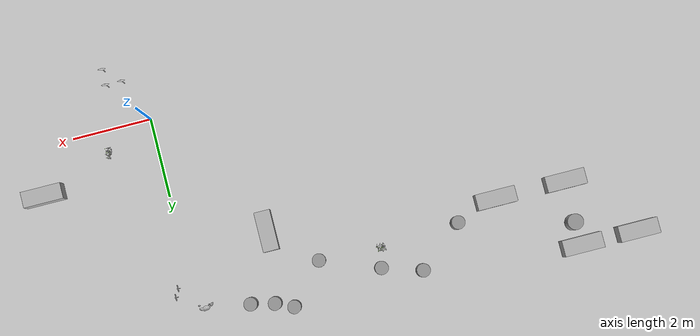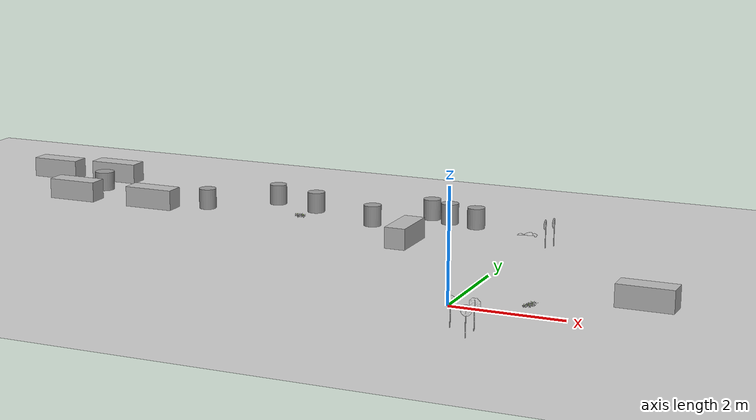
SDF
<sdf version="1.4">
 <world name="Tu world">
  <plugin name="hello_world" filename="libhello_world.so"/>
  <include><uri>model://sun</uri></include>
  <include><uri>model://ground_plane</uri></include>
  <physics type="ode">
   <real_time_update_rate>1000.0</real_time_update_rate>
   <max_step_size>0.001</max_step_size>
   <real_time_factor>1</real_time_factor>
   <ode>
    <solver>
     <type>quick</type>
     <iters>150</iters>
     <precon_iters>0</precon_iters>
     <sor>1.400000</sor>
     <use_dynamic_moi_rescaling>1</use_dynamic_moi_rescaling>
    </solver>
    <constraints>
     <cfm>0.00001</cfm>
     <erp>0.2</erp>
     <contact_max_correcting_vel>2000.000000</contact_max_correcting_vel>
     <contact_surface_layer>0.01000</contact_surface_layer>
    </constraints>
   </ode>
  </physics>
  <include><name>grass</name><pose>-4.77 4.53 0 0 0 0</pose><uri>model://grass</uri></include>
  <include><name>grass thick</name><pose>-4.8 4.6 0 0 0 0</pose><uri>model://grass</uri></include>
  <include><name>grass clone</name><pose>1.17 0.51 0 0 0 1.53</pose><uri>model://grass</uri></include>
  <include><name>grass clone thick</name><pose>1.2 0.6 0 0 0 1.53</pose><uri>model://grass</uri></include>
  <include><name>snow</name><pose>-0.28 4.88 0 0 0 0</pose><uri>model://snow</uri></include>
  <include>
   <name>right</name>
   <pose>0.3 4.27 -0.03 0 0 -1.5708</pose>
   <uri>model://13-turn-right-ahead</uri>
  </include>
  <include>
   <name>left</name>
   <pose>0.4 4.47 -0.03 0 0 -1.5708</pose>
   <uri>model://12-turn-left-ahead</uri>
  </include>
  <include><name>stop</name><pose>0.83 -1.06 -0.03 0 0 3.1416</pose><uri>model://11-stop</uri></include>
  <include><name>ahead</name><pose>0.43 -1.06 -0.03 0 0 3.1416</pose><uri>model://0-ahead-only</uri></include>
  <include>
   <name>forbid</name>
   <pose>0.83 -1.46 -0.03 0 0 3.1416</pose>
   <uri>model://9-road-closed-prohibit</uri>
  </include>
  <model name="cylinder">
   <pose>-9.55 5.11 0.16 0 0 0</pose>
   <link name="link">
    <collision name="collision">
     <geometry><cylinder><radius>0.2</radius><length>0.3</length></cylinder></geometry>
    </collision>
    <visual name="visual">
     <geometry><cylinder><radius>0.2</radius><length>0.4</length></cylinder></geometry>
     <material>
      <lighting>1</lighting>
      <script><uri>file://media/materials/scripts/gazebo.material</uri><name>Gazebo/Grey</name></script>
      <shader type="pixel"><normal_map>__default__</normal_map></shader>
      <ambient>0.8 0.8 0.8 1</ambient>
      <diffuse>0.8 0.8 0.8 1</diffuse>
      <specular>0.8 0.8 0.8 1</specular>
      <emissive>0.8 0.8 0.8 1</emissive>
     </material>
    </visual>
   </link>
  </model>
  <model name="cylinder2">
   <pose>-6.75 4.41 0.21 0 0 0</pose>
   <link name="link">
    <collision name="collision">
     <geometry><cylinder><radius>0.17</radius><length>0.4</length></cylinder></geometry>
    </collision>
    <visual name="visual">
     <geometry><cylinder><radius>0.17</radius><length>0.4</length></cylinder></geometry>
     <material>
      <lighting>1</lighting>
      <script><uri>file://media/materials/scripts/gazebo.material</uri><name>Gazebo/Grey</name></script>
      <shader type="pixel"><normal_map>__default__</normal_map></shader>
      <ambient>0.8 0.8 0.8 1</ambient>
      <diffuse>0.8 0.8 0.8 1</diffuse>
      <specular>0.8 0.8 0.8 1</specular>
      <emissive>0.8 0.8 0.8 1</emissive>
     </material>
    </visual>
   </link>
  </model>
  <model name="cylinder3">
   <pose>-6.75 4.41 0.21 0 0 0</pose>
   <link name="link">
    <collision name="collision">
     <geometry><cylinder><radius>0.17</radius><length>0.4</length></cylinder></geometry>
    </collision>
    <visual name="visual">
     <geometry><cylinder><radius>0.17</radius><length>0.4</length></cylinder></geometry>
     <material>
      <lighting>1</lighting>
      <script><uri>file://media/materials/scripts/gazebo.material</uri><name>Gazebo/Grey</name></script>
      <shader type="pixel"><normal_map>__default__</normal_map></shader>
      <ambient>0.8 0.8 0.8 1</ambient>
      <diffuse>0.8 0.8 0.8 1</diffuse>
      <specular>0.8 0.8 0.8 1</specular>
      <emissive>0.8 0.8 0.8 1</emissive>
     </material>
    </visual>
   </link>
  </model>
  <model name="cylinder4">
   <pose>-5.63 5.33 0.21 0 0 0</pose>
   <link name="link">
    <collision name="collision">
     <geometry><cylinder><radius>0.17</radius><length>0.4</length></cylinder></geometry>
    </collision>
    <visual name="visual">
     <geometry><cylinder><radius>0.17</radius><length>0.4</length></cylinder></geometry>
     <material>
      <lighting>1</lighting>
      <script><uri>file://media/materials/scripts/gazebo.material</uri><name>Gazebo/Grey</name></script>
      <shader type="pixel"><normal_map>__default__</normal_map></shader>
      <ambient>0.8 0.8 0.8 1</ambient>
      <diffuse>0.8 0.8 0.8 1</diffuse>
      <specular>0.8 0.8 0.8 1</specular>
      <emissive>0.8 0.8 0.8 1</emissive>
     </material>
    </visual>
   </link>
  </model>
  <model name="cylinder5">
   <pose>-4.65 5.02 0.21 0 0 0</pose>
   <link name="link">
    <collision name="collision">
     <geometry><cylinder><radius>0.17</radius><length>0.4</length></cylinder></geometry>
    </collision>
    <visual name="visual">
     <geometry><cylinder><radius>0.17</radius><length>0.4</length></cylinder></geometry>
     <material>
      <lighting>1</lighting>
      <script><uri>file://media/materials/scripts/gazebo.material</uri><name>Gazebo/Grey</name></script>
      <shader type="pixel"><normal_map>__default__</normal_map></shader>
      <ambient>0.8 0.8 0.8 1</ambient>
      <diffuse>0.8 0.8 0.8 1</diffuse>
      <specular>0.8 0.8 0.8 1</specular>
      <emissive>0.8 0.8 0.8 1</emissive>
     </material>
    </visual>
   </link>
  </model>
  <model name="cylinder6">
   <pose>-3.21 4.46 0.21 0 0 0</pose>
   <link name="link">
    <collision name="collision">
     <geometry><cylinder><radius>0.17</radius><length>0.4</length></cylinder></geometry>
    </collision>
    <visual name="visual">
     <geometry><cylinder><radius>0.17</radius><length>0.4</length></cylinder></geometry>
     <material>
      <lighting>1</lighting>
      <script><uri>file://media/materials/scripts/gazebo.material</uri><name>Gazebo/Grey</name></script>
      <shader type="pixel"><normal_map>__default__</normal_map></shader>
      <ambient>0.8 0.8 0.8 1</ambient>
      <diffuse>0.8 0.8 0.8 1</diffuse>
      <specular>0.8 0.8 0.8 1</specular>
      <emissive>0.8 0.8 0.8 1</emissive>
     </material>
    </visual>
   </link>
  </model>
  <model name="cylinder7">
   <pose>-2.35 5.41 0.21 0 0 0</pose>
   <link name="link">
    <collision name="collision">
     <geometry><cylinder><radius>0.17</radius><length>0.4</length></cylinder></geometry>
    </collision>
    <visual name="visual">
     <geometry><cylinder><radius>0.17</radius><length>0.4</length></cylinder></geometry>
     <material>
      <lighting>1</lighting>
      <script><uri>file://media/materials/scripts/gazebo.material</uri><name>Gazebo/Grey</name></script>
      <shader type="pixel"><normal_map>__default__</normal_map></shader>
      <ambient>0.8 0.8 0.8 1</ambient>
      <diffuse>0.8 0.8 0.8 1</diffuse>
      <specular>0.8 0.8 0.8 1</specular>
      <emissive>0.8 0.8 0.8 1</emissive>
     </material>
    </visual>
   </link>
  </model>
  <model name="cylinder8">
   <pose>-1.91 5.21 0.21 0 0 0</pose>
   <link name="link">
    <collision name="collision">
     <geometry><cylinder><radius>0.17</radius><length>0.4</length></cylinder></geometry>
    </collision>
    <visual name="visual">
     <geometry><cylinder><radius>0.17</radius><length>0.4</length></cylinder></geometry>
     <material>
      <lighting>1</lighting>
      <script><uri>file://media/materials/scripts/gazebo.material</uri><name>Gazebo/Grey</name></script>
      <shader type="pixel"><normal_map>__default__</normal_map></shader>
      <ambient>0.8 0.8 0.8 1</ambient>
      <diffuse>0.8 0.8 0.8 1</diffuse>
      <specular>0.8 0.8 0.8 1</specular>
      <emissive>0.8 0.8 0.8 1</emissive>
     </material>
    </visual>
   </link>
  </model>
  <model name="cylinder9">
   <pose>-1.33 5.08 0.21 0 0 0</pose>
   <link name="link">
    <collision name="collision">
     <geometry><cylinder><radius>0.17</radius><length>0.4</length></cylinder></geometry>
    </collision>
    <visual name="visual">
     <geometry><cylinder><radius>0.17</radius><length>0.4</length></cylinder></geometry>
     <material>
      <lighting>1</lighting>
      <script><uri>file://media/materials/scripts/gazebo.material</uri><name>Gazebo/Grey</name></script>
      <shader type="pixel"><normal_map>__default__</normal_map></shader>
      <ambient>0.8 0.8 0.8 1</ambient>
      <diffuse>0.8 0.8 0.8 1</diffuse>
      <specular>0.8 0.8 0.8 1</specular>
      <emissive>0.8 0.8 0.8 1</emissive>
     </material>
    </visual>
   </link>
  </model>
  <model name="house_1">
   <pose>-11.0 5.68 0.21 0 0 1.5708</pose>
   <link name="link">
    <collision name="collision"><geometry><box><size>0.4 1 0.4</size></box></geometry></collision>
    <visual name="visual"><geometry><box><size>0.4 1 0.4</size></box></geometry></visual>
   </link>
  </model>
  <model name="house_2">
   <pose>-9.57 5.68 0.26 0 0 1.5708</pose>
   <link name="link">
    <collision name="collision"><geometry><box><size>0.4 1 0.4</size></box></geometry></collision>
    <visual name="visual"><geometry><box><size>0.4 1 0.4</size></box></geometry></visual>
   </link>
  </model>
  <model name="house_3">
   <pose>-9.58 4.06 0.21 0 0 1.5708</pose>
   <link name="link">
    <collision name="collision"><geometry><box><size>0.4 1 0.4</size></box></geometry></collision>
    <visual name="visual"><geometry><box><size>0.4 1 0.4</size></box></geometry></visual>
   </link>
  </model>
  <model name="house_4">
   <pose>-7.81 4.06 0.21 0 0 1.5708</pose>
   <link name="link">
    <collision name="collision"><geometry><box><size>0.4 1 0.4</size></box></geometry></collision>
    <visual name="visual"><geometry><box><size>0.4 1 0.4</size></box></geometry></visual>
   </link>
  </model>
  <model name="house_5">
   <pose>-2.14 3.44 0.21 0 0 0</pose>
   <link name="link">
    <collision name="collision"><geometry><box><size>0.4 1 0.4</size></box></geometry></collision>
    <visual name="visual"><geometry><box><size>0.4 1 0.4</size></box></geometry></visual>
   </link>
  </model>
  <model name="house_6">
   <pose>2.99 1.22 0.21 0 0 1.5708</pose>
   <link name="link">
    <collision name="collision"><geometry><box><size>0.4 1 0.4</size></box></geometry></collision>
    <visual name="visual"><geometry><box><size>0.4 1 0.4</size></box></geometry></visual>
   </link>
  </model>
  <scene>
   <ambient>0.95 0.95 0.95 1</ambient>
   <background>0.3 0.3 0.3 1</background>
   <shadows>true</shadows>
   <sky><clouds><speed>0</speed></clouds></sky>
  </scene>
 </world>
</sdf>

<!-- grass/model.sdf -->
<sdf version='1.7'>
  <model name='grass'>
	<static>true</static>
    <link name='link_0'>

		<collision name="collision">
		<geometry>
			<mesh>
				<uri>model://grass/mesh/model.dae</uri>
				<scale>0 0 0</scale>
			</mesh>
		</geometry>
		</collision>

		<visual name="visual">
		<cast_shadows>true</cast_shadows>
		<geometry>
			<mesh>
				<uri>model://grass/mesh/model.dae</uri>
				<scale>0.07 0.07 0.07</scale>
			</mesh>
		</geometry>
		</visual>
    </link>
  </model>
</sdf>

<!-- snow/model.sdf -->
<sdf version='1.7'>
  <model name='snow'>
	<static>true</static>
    <link name='link_0'>

		<collision name="collision">
		<geometry>
			<mesh>
				<uri>model://snow/mesh/model.dae</uri>
				<scale>0 0 0</scale>
			</mesh>
		</geometry>
		</collision>

		<visual name="visual">
		<cast_shadows>true</cast_shadows>
		<geometry>
			<mesh>
				<uri>model://snow/mesh/model.dae</uri>
				<scale>0.04 0.04 0.04</scale>
			</mesh>
		</geometry>
		</visual>
    </link>
  </model>
</sdf>

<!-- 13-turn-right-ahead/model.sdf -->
<sdf version='1.7'>
  <model name='13-turn-right-ahead'>
	<static>true</static>
    <link name='link_0'>

		<collision name="collision">
		<geometry>
			<mesh>
				<uri>model://13-turn-right-ahead/mesh/model.dae</uri>
	            <scale>0 0 0</scale>
			</mesh>
		</geometry>
		</collision>

		<visual name="visual">
		<cast_shadows>true</cast_shadows>
		<geometry>
			<mesh>
				<uri>model://13-turn-right-ahead/mesh/model.dae</uri>
	            <scale>0.1 0.1 0.1</scale>
			</mesh>
		</geometry>
		</visual>
    </link>
  </model>
</sdf>

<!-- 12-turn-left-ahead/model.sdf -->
<sdf version='1.7'>
  <model name='12-turn-left-ahead'>
	<static>true</static>
    <link name='link_0'>

		<collision name="collision">
		<geometry>
			<mesh>
				<uri>model://12-turn-left-ahead/mesh/model.dae</uri>
	            <scale>0 0 0</scale>
			</mesh>
		</geometry>
		</collision>

		<visual name="visual">
		<cast_shadows>true</cast_shadows>
		<geometry>
			<mesh>
				<uri>model://12-turn-left-ahead/mesh/model.dae</uri>
	            <scale>0.1 0.1 0.1</scale>
			</mesh>
		</geometry>
		</visual>
    </link>
  </model>
</sdf>

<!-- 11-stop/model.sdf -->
<sdf version='1.7'>
  <model name='11-stop'>
	<static>true</static>
    <link name='link_0'>

		<collision name="collision">
		<geometry>
			<mesh>
				<uri>model://11-stop/mesh/model.dae</uri>
	            <scale>0 0 0</scale>
			</mesh>
		</geometry>
		</collision>

		<visual name="visual">
		<cast_shadows>true</cast_shadows>
		<geometry>
			<mesh>
				<uri>model://11-stop/mesh/model.dae</uri>
	            <scale>0.1 0.1 0.1</scale>
			</mesh>
		</geometry>
		</visual>
    </link>
  </model>
</sdf>

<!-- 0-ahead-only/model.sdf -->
<sdf version='1.7'>
  <model name='0-ahead-only'>
	<static>true</static>
    <link name='link_0'>

		<collision name="collision">
		<geometry>
			<mesh>
				<uri>model://0-ahead-only/mesh/model.dae</uri>
	            <scale>0 0 0</scale>
			</mesh>
		</geometry>
		</collision>

		<visual name="visual">
		<cast_shadows>true</cast_shadows>
		<geometry>
			<mesh>
				<uri>model://0-ahead-only/mesh/model.dae</uri>
	            <scale>0.1 0.1 0.1</scale>
			</mesh>
		</geometry>
		</visual>
    </link>
  </model>
</sdf>

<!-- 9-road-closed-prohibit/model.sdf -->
<sdf version='1.7'>
  <model name='9-road-closed-prohibit'>
	<static>true</static>
    <link name='link_0'>

		<collision name="collision">
		<geometry>
			<mesh>
				<uri>model://9-road-closed-prohibit/mesh/model.dae</uri>
	            <scale>0 0 0</scale>
			</mesh>
		</geometry>
		</collision>

		<visual name="visual">
		<cast_shadows>true</cast_shadows>
		<geometry>
			<mesh>
				<uri>model://9-road-closed-prohibit/mesh/model.dae</uri>
	            <scale>0.1 0.1 0.1</scale>
			</mesh>
		</geometry>
		</visual>
    </link>
  </model>
</sdf>
